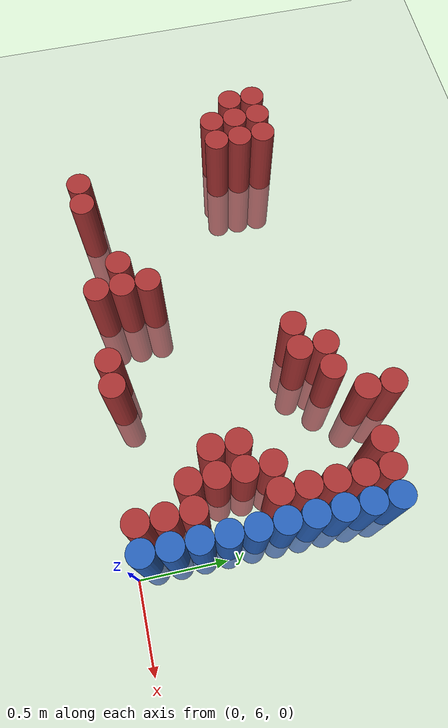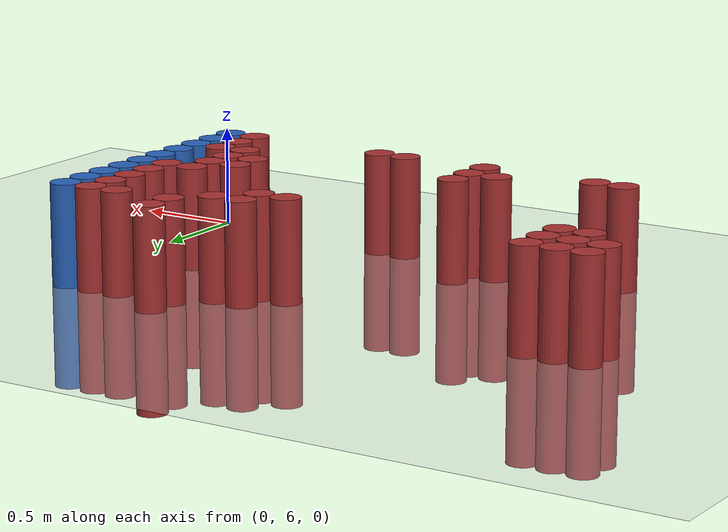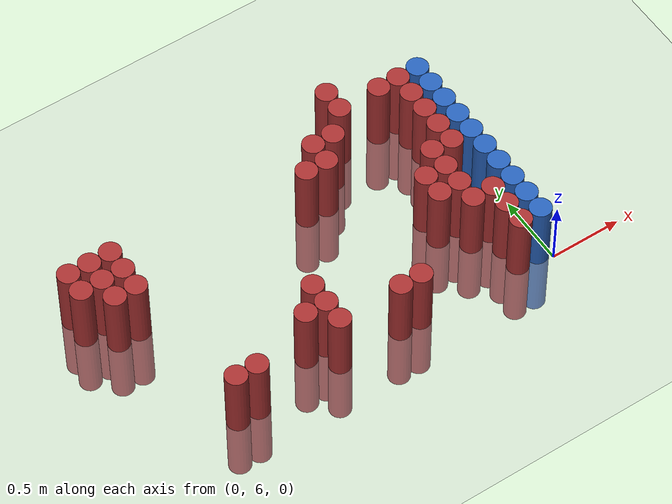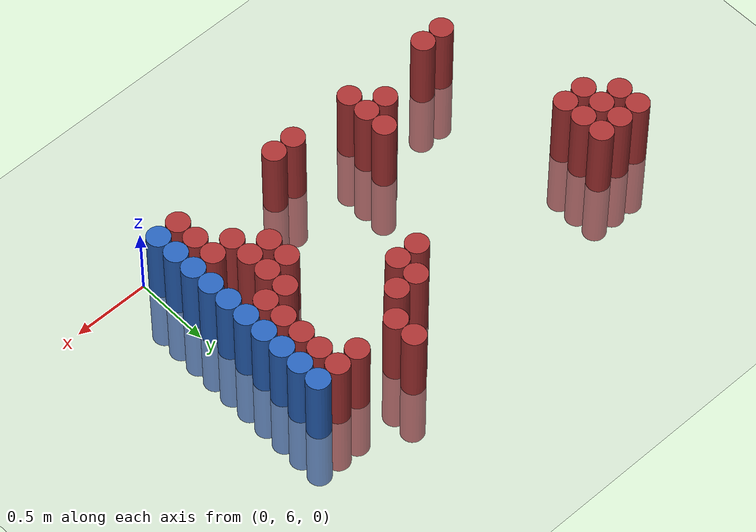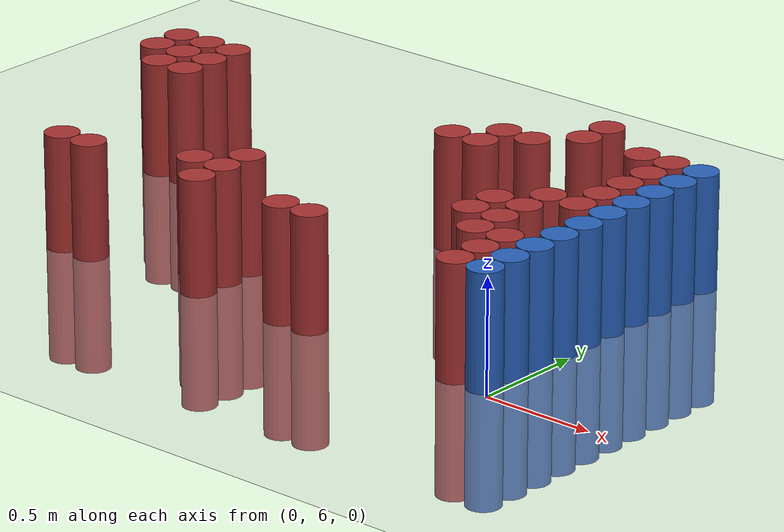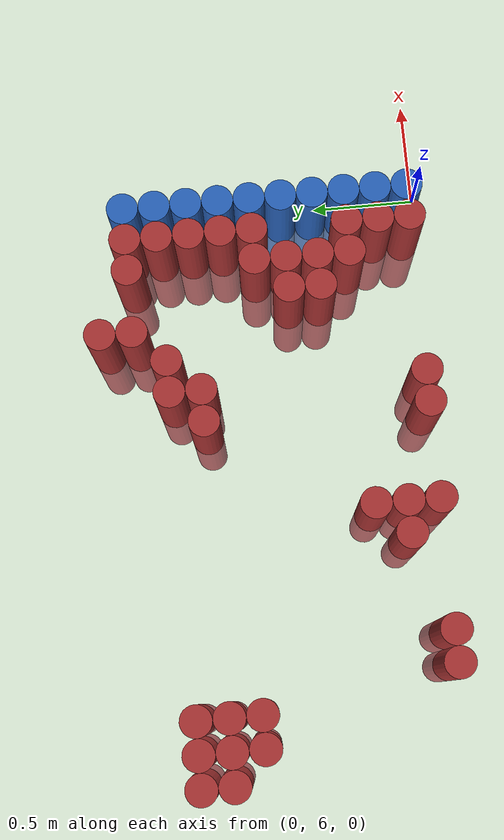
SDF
<sdf version="1.6">
 <world name="default">
  <model name="ground_plane">
   <static>1</static>
   <link name="link">
    <collision name="collision">
     <geometry><plane><normal>0 0 1</normal><size>100 100</size></plane></geometry>
     <surface><friction><ode><mu>100</mu><mu2>50</mu2></ode></friction></surface>
    </collision>
    <visual name="visual">
     <cast_shadows>0</cast_shadows>
     <geometry><plane><normal>0 0 1</normal><size>100 100</size></plane></geometry>
     <material>
      <script><uri>file://media/materials/scripts/gazebo.material</uri><name>Gazebo/Grey</name></script>
     </material>
    </visual>
   </link>
  </model>
  <model name="unit_cylinder_166">
   <static>1</static>
   <pose>-2.775000 7.125000 0.000000 0.000000 0.000000 0.000000</pose>
   <link name="link">
    <inertial>
     <mass>1</mass>
     <inertia><ixx>0.145833</ixx><ixy>0</ixy><ixz>0</ixz><iyy>0.145833</iyy><iyz>0</iyz><izz>0.125</izz></inertia>
    </inertial>
    <collision name="collision">
     <geometry><cylinder><radius>0.075000</radius><length>1</length></cylinder></geometry>
    </collision>
    <visual name="visual">
     <geometry><cylinder><radius>0.075000</radius><length>1</length></cylinder></geometry>
     <material>
      <ambient>0.648000 0.192000 0.192000 1</ambient>
      <diffuse>0.648000 0.192000 0.192000 1</diffuse>
     </material>
     <material>
      <script><name>Gazebo/Grey</name><uri>file://media/materials/scripts/gazebo.material</uri></script>
     </material>
    </visual>
   </link>
  </model>
  <model name="unit_cylinder_167">
   <static>1</static>
   <pose>-2.775000 7.275000 0.000000 0.000000 0.000000 0.000000</pose>
   <link name="link">
    <inertial>
     <mass>1</mass>
     <inertia><ixx>0.145833</ixx><ixy>0</ixy><ixz>0</ixz><iyy>0.145833</iyy><iyz>0</iyz><izz>0.125</izz></inertia>
    </inertial>
    <collision name="collision">
     <geometry><cylinder><radius>0.075000</radius><length>1</length></cylinder></geometry>
    </collision>
    <visual name="visual">
     <geometry><cylinder><radius>0.075000</radius><length>1</length></cylinder></geometry>
     <material>
      <ambient>0.648000 0.192000 0.192000 1</ambient>
      <diffuse>0.648000 0.192000 0.192000 1</diffuse>
     </material>
     <material>
      <script><name>Gazebo/Grey</name><uri>file://media/materials/scripts/gazebo.material</uri></script>
     </material>
    </visual>
   </link>
  </model>
  <model name="unit_cylinder_171">
   <static>1</static>
   <pose>-2.625000 6.975000 0.000000 0.000000 0.000000 0.000000</pose>
   <link name="link">
    <inertial>
     <mass>1</mass>
     <inertia><ixx>0.145833</ixx><ixy>0</ixy><ixz>0</ixz><iyy>0.145833</iyy><iyz>0</iyz><izz>0.125</izz></inertia>
    </inertial>
    <collision name="collision">
     <geometry><cylinder><radius>0.075000</radius><length>1</length></cylinder></geometry>
    </collision>
    <visual name="visual">
     <geometry><cylinder><radius>0.075000</radius><length>1</length></cylinder></geometry>
     <material>
      <ambient>0.648000 0.192000 0.192000 1</ambient>
      <diffuse>0.648000 0.192000 0.192000 1</diffuse>
     </material>
     <material>
      <script><name>Gazebo/Grey</name><uri>file://media/materials/scripts/gazebo.material</uri></script>
     </material>
    </visual>
   </link>
  </model>
  <model name="unit_cylinder_172">
   <static>1</static>
   <pose>-2.625000 7.125000 0.000000 0.000000 0.000000 0.000000</pose>
   <link name="link">
    <inertial>
     <mass>1</mass>
     <inertia><ixx>0.145833</ixx><ixy>0</ixy><ixz>0</ixz><iyy>0.145833</iyy><iyz>0</iyz><izz>0.125</izz></inertia>
    </inertial>
    <collision name="collision">
     <geometry><cylinder><radius>0.075000</radius><length>1</length></cylinder></geometry>
    </collision>
    <visual name="visual">
     <geometry><cylinder><radius>0.075000</radius><length>1</length></cylinder></geometry>
     <material>
      <ambient>0.648000 0.192000 0.192000 1</ambient>
      <diffuse>0.648000 0.192000 0.192000 1</diffuse>
     </material>
     <material>
      <script><name>Gazebo/Grey</name><uri>file://media/materials/scripts/gazebo.material</uri></script>
     </material>
    </visual>
   </link>
  </model>
  <model name="unit_cylinder_173">
   <static>1</static>
   <pose>-2.625000 7.275000 0.000000 0.000000 0.000000 0.000000</pose>
   <link name="link">
    <inertial>
     <mass>1</mass>
     <inertia><ixx>0.145833</ixx><ixy>0</ixy><ixz>0</ixz><iyy>0.145833</iyy><iyz>0</iyz><izz>0.125</izz></inertia>
    </inertial>
    <collision name="collision">
     <geometry><cylinder><radius>0.075000</radius><length>1</length></cylinder></geometry>
    </collision>
    <visual name="visual">
     <geometry><cylinder><radius>0.075000</radius><length>1</length></cylinder></geometry>
     <material>
      <ambient>0.648000 0.192000 0.192000 1</ambient>
      <diffuse>0.648000 0.192000 0.192000 1</diffuse>
     </material>
     <material>
      <script><name>Gazebo/Grey</name><uri>file://media/materials/scripts/gazebo.material</uri></script>
     </material>
    </visual>
   </link>
  </model>
  <model name="unit_cylinder_176">
   <static>1</static>
   <pose>-2.475000 6.975000 0.000000 0.000000 0.000000 0.000000</pose>
   <link name="link">
    <inertial>
     <mass>1</mass>
     <inertia><ixx>0.145833</ixx><ixy>0</ixy><ixz>0</ixz><iyy>0.145833</iyy><iyz>0</iyz><izz>0.125</izz></inertia>
    </inertial>
    <collision name="collision">
     <geometry><cylinder><radius>0.075000</radius><length>1</length></cylinder></geometry>
    </collision>
    <visual name="visual">
     <geometry><cylinder><radius>0.075000</radius><length>1</length></cylinder></geometry>
     <material>
      <ambient>0.648000 0.192000 0.192000 1</ambient>
      <diffuse>0.648000 0.192000 0.192000 1</diffuse>
     </material>
     <material>
      <script><name>Gazebo/Grey</name><uri>file://media/materials/scripts/gazebo.material</uri></script>
     </material>
    </visual>
   </link>
  </model>
  <model name="unit_cylinder_177">
   <static>1</static>
   <pose>-2.475000 7.125000 0.000000 0.000000 0.000000 0.000000</pose>
   <link name="link">
    <inertial>
     <mass>1</mass>
     <inertia><ixx>0.145833</ixx><ixy>0</ixy><ixz>0</ixz><iyy>0.145833</iyy><iyz>0</iyz><izz>0.125</izz></inertia>
    </inertial>
    <collision name="collision">
     <geometry><cylinder><radius>0.075000</radius><length>1</length></cylinder></geometry>
    </collision>
    <visual name="visual">
     <geometry><cylinder><radius>0.075000</radius><length>1</length></cylinder></geometry>
     <material>
      <ambient>0.648000 0.192000 0.192000 1</ambient>
      <diffuse>0.648000 0.192000 0.192000 1</diffuse>
     </material>
     <material>
      <script><name>Gazebo/Grey</name><uri>file://media/materials/scripts/gazebo.material</uri></script>
     </material>
    </visual>
   </link>
  </model>
  <model name="unit_cylinder_178">
   <static>1</static>
   <pose>-2.475000 7.275000 0.000000 0.000000 0.000000 0.000000</pose>
   <link name="link">
    <inertial>
     <mass>1</mass>
     <inertia><ixx>0.145833</ixx><ixy>0</ixy><ixz>0</ixz><iyy>0.145833</iyy><iyz>0</iyz><izz>0.125</izz></inertia>
    </inertial>
    <collision name="collision">
     <geometry><cylinder><radius>0.075000</radius><length>1</length></cylinder></geometry>
    </collision>
    <visual name="visual">
     <geometry><cylinder><radius>0.075000</radius><length>1</length></cylinder></geometry>
     <material>
      <ambient>0.648000 0.192000 0.192000 1</ambient>
      <diffuse>0.648000 0.192000 0.192000 1</diffuse>
     </material>
     <material>
      <script><name>Gazebo/Grey</name><uri>file://media/materials/scripts/gazebo.material</uri></script>
     </material>
    </visual>
   </link>
  </model>
  <model name="unit_cylinder_180">
   <static>1</static>
   <pose>-2.325000 6.075000 0.000000 0.000000 0.000000 0.000000</pose>
   <link name="link">
    <inertial>
     <mass>1</mass>
     <inertia><ixx>0.145833</ixx><ixy>0</ixy><ixz>0</ixz><iyy>0.145833</iyy><iyz>0</iyz><izz>0.125</izz></inertia>
    </inertial>
    <collision name="collision">
     <geometry><cylinder><radius>0.075000</radius><length>1</length></cylinder></geometry>
    </collision>
    <visual name="visual">
     <geometry><cylinder><radius>0.075000</radius><length>1</length></cylinder></geometry>
     <material>
      <ambient>0.648000 0.192000 0.192000 1</ambient>
      <diffuse>0.648000 0.192000 0.192000 1</diffuse>
     </material>
     <material>
      <script><name>Gazebo/Grey</name><uri>file://media/materials/scripts/gazebo.material</uri></script>
     </material>
    </visual>
   </link>
  </model>
  <model name="unit_cylinder_184">
   <static>1</static>
   <pose>-2.175000 6.075000 0.000000 0.000000 0.000000 0.000000</pose>
   <link name="link">
    <inertial>
     <mass>1</mass>
     <inertia><ixx>0.145833</ixx><ixy>0</ixy><ixz>0</ixz><iyy>0.145833</iyy><iyz>0</iyz><izz>0.125</izz></inertia>
    </inertial>
    <collision name="collision">
     <geometry><cylinder><radius>0.075000</radius><length>1</length></cylinder></geometry>
    </collision>
    <visual name="visual">
     <geometry><cylinder><radius>0.075000</radius><length>1</length></cylinder></geometry>
     <material>
      <ambient>0.648000 0.192000 0.192000 1</ambient>
      <diffuse>0.648000 0.192000 0.192000 1</diffuse>
     </material>
     <material>
      <script><name>Gazebo/Grey</name><uri>file://media/materials/scripts/gazebo.material</uri></script>
     </material>
    </visual>
   </link>
  </model>
  <model name="unit_cylinder_200">
   <static>1</static>
   <pose>-1.725000 6.225000 0.000000 0.000000 0.000000 0.000000</pose>
   <link name="link">
    <inertial>
     <mass>1</mass>
     <inertia><ixx>0.145833</ixx><ixy>0</ixy><ixz>0</ixz><iyy>0.145833</iyy><iyz>0</iyz><izz>0.125</izz></inertia>
    </inertial>
    <collision name="collision">
     <geometry><cylinder><radius>0.075000</radius><length>1</length></cylinder></geometry>
    </collision>
    <visual name="visual">
     <geometry><cylinder><radius>0.075000</radius><length>1</length></cylinder></geometry>
     <material>
      <ambient>0.648000 0.192000 0.192000 1</ambient>
      <diffuse>0.648000 0.192000 0.192000 1</diffuse>
     </material>
     <material>
      <script><name>Gazebo/Grey</name><uri>file://media/materials/scripts/gazebo.material</uri></script>
     </material>
    </visual>
   </link>
  </model>
  <model name="unit_cylinder_205">
   <static>1</static>
   <pose>-1.575000 6.075000 0.000000 0.000000 0.000000 0.000000</pose>
   <link name="link">
    <inertial>
     <mass>1</mass>
     <inertia><ixx>0.145833</ixx><ixy>0</ixy><ixz>0</ixz><iyy>0.145833</iyy><iyz>0</iyz><izz>0.125</izz></inertia>
    </inertial>
    <collision name="collision">
     <geometry><cylinder><radius>0.075000</radius><length>1</length></cylinder></geometry>
    </collision>
    <visual name="visual">
     <geometry><cylinder><radius>0.075000</radius><length>1</length></cylinder></geometry>
     <material>
      <ambient>0.648000 0.192000 0.192000 1</ambient>
      <diffuse>0.648000 0.192000 0.192000 1</diffuse>
     </material>
     <material>
      <script><name>Gazebo/Grey</name><uri>file://media/materials/scripts/gazebo.material</uri></script>
     </material>
    </visual>
   </link>
  </model>
  <model name="unit_cylinder_206">
   <static>1</static>
   <pose>-1.575000 6.225000 0.000000 0.000000 0.000000 0.000000</pose>
   <link name="link">
    <inertial>
     <mass>1</mass>
     <inertia><ixx>0.145833</ixx><ixy>0</ixy><ixz>0</ixz><iyy>0.145833</iyy><iyz>0</iyz><izz>0.125</izz></inertia>
    </inertial>
    <collision name="collision">
     <geometry><cylinder><radius>0.075000</radius><length>1</length></cylinder></geometry>
    </collision>
    <visual name="visual">
     <geometry><cylinder><radius>0.075000</radius><length>1</length></cylinder></geometry>
     <material>
      <ambient>0.648000 0.192000 0.192000 1</ambient>
      <diffuse>0.648000 0.192000 0.192000 1</diffuse>
     </material>
     <material>
      <script><name>Gazebo/Grey</name><uri>file://media/materials/scripts/gazebo.material</uri></script>
     </material>
    </visual>
   </link>
  </model>
  <model name="unit_cylinder_207">
   <static>1</static>
   <pose>-1.575000 6.375000 0.000000 0.000000 0.000000 0.000000</pose>
   <link name="link">
    <inertial>
     <mass>1</mass>
     <inertia><ixx>0.145833</ixx><ixy>0</ixy><ixz>0</ixz><iyy>0.145833</iyy><iyz>0</iyz><izz>0.125</izz></inertia>
    </inertial>
    <collision name="collision">
     <geometry><cylinder><radius>0.075000</radius><length>1</length></cylinder></geometry>
    </collision>
    <visual name="visual">
     <geometry><cylinder><radius>0.075000</radius><length>1</length></cylinder></geometry>
     <material>
      <ambient>0.648000 0.192000 0.192000 1</ambient>
      <diffuse>0.648000 0.192000 0.192000 1</diffuse>
     </material>
     <material>
      <script><name>Gazebo/Grey</name><uri>file://media/materials/scripts/gazebo.material</uri></script>
     </material>
    </visual>
   </link>
  </model>
  <model name="unit_cylinder_208">
   <static>1</static>
   <pose>-1.125000 6.075000 0.000000 0.000000 0.000000 0.000000</pose>
   <link name="link">
    <inertial>
     <mass>1</mass>
     <inertia><ixx>0.145833</ixx><ixy>0</ixy><ixz>0</ixz><iyy>0.145833</iyy><iyz>0</iyz><izz>0.125</izz></inertia>
    </inertial>
    <collision name="collision">
     <geometry><cylinder><radius>0.075000</radius><length>1</length></cylinder></geometry>
    </collision>
    <visual name="visual">
     <geometry><cylinder><radius>0.075000</radius><length>1</length></cylinder></geometry>
     <material>
      <ambient>0.648000 0.192000 0.192000 1</ambient>
      <diffuse>0.648000 0.192000 0.192000 1</diffuse>
     </material>
     <material>
      <script><name>Gazebo/Grey</name><uri>file://media/materials/scripts/gazebo.material</uri></script>
     </material>
    </visual>
   </link>
  </model>
  <model name="unit_cylinder_209">
   <static>1</static>
   <pose>-1.125000 7.125000 0.000000 0.000000 0.000000 0.000000</pose>
   <link name="link">
    <inertial>
     <mass>1</mass>
     <inertia><ixx>0.145833</ixx><ixy>0</ixy><ixz>0</ixz><iyy>0.145833</iyy><iyz>0</iyz><izz>0.125</izz></inertia>
    </inertial>
    <collision name="collision">
     <geometry><cylinder><radius>0.075000</radius><length>1</length></cylinder></geometry>
    </collision>
    <visual name="visual">
     <geometry><cylinder><radius>0.075000</radius><length>1</length></cylinder></geometry>
     <material>
      <ambient>0.648000 0.192000 0.192000 1</ambient>
      <diffuse>0.648000 0.192000 0.192000 1</diffuse>
     </material>
     <material>
      <script><name>Gazebo/Grey</name><uri>file://media/materials/scripts/gazebo.material</uri></script>
     </material>
    </visual>
   </link>
  </model>
  <model name="unit_cylinder_211">
   <static>1</static>
   <pose>-0.975000 6.075000 0.000000 0.000000 0.000000 0.000000</pose>
   <link name="link">
    <inertial>
     <mass>1</mass>
     <inertia><ixx>0.145833</ixx><ixy>0</ixy><ixz>0</ixz><iyy>0.145833</iyy><iyz>0</iyz><izz>0.125</izz></inertia>
    </inertial>
    <collision name="collision">
     <geometry><cylinder><radius>0.075000</radius><length>1</length></cylinder></geometry>
    </collision>
    <visual name="visual">
     <geometry><cylinder><radius>0.075000</radius><length>1</length></cylinder></geometry>
     <material>
      <ambient>0.648000 0.192000 0.192000 1</ambient>
      <diffuse>0.648000 0.192000 0.192000 1</diffuse>
     </material>
     <material>
      <script><name>Gazebo/Grey</name><uri>file://media/materials/scripts/gazebo.material</uri></script>
     </material>
    </visual>
   </link>
  </model>
  <model name="unit_cylinder_212">
   <static>1</static>
   <pose>-0.975000 7.125000 0.000000 0.000000 0.000000 0.000000</pose>
   <link name="link">
    <inertial>
     <mass>1</mass>
     <inertia><ixx>0.145833</ixx><ixy>0</ixy><ixz>0</ixz><iyy>0.145833</iyy><iyz>0</iyz><izz>0.125</izz></inertia>
    </inertial>
    <collision name="collision">
     <geometry><cylinder><radius>0.075000</radius><length>1</length></cylinder></geometry>
    </collision>
    <visual name="visual">
     <geometry><cylinder><radius>0.075000</radius><length>1</length></cylinder></geometry>
     <material>
      <ambient>0.648000 0.192000 0.192000 1</ambient>
      <diffuse>0.648000 0.192000 0.192000 1</diffuse>
     </material>
     <material>
      <script><name>Gazebo/Grey</name><uri>file://media/materials/scripts/gazebo.material</uri></script>
     </material>
    </visual>
   </link>
  </model>
  <model name="unit_cylinder_213">
   <static>1</static>
   <pose>-0.975000 7.275000 0.000000 0.000000 0.000000 0.000000</pose>
   <link name="link">
    <inertial>
     <mass>1</mass>
     <inertia><ixx>0.145833</ixx><ixy>0</ixy><ixz>0</ixz><iyy>0.145833</iyy><iyz>0</iyz><izz>0.125</izz></inertia>
    </inertial>
    <collision name="collision">
     <geometry><cylinder><radius>0.075000</radius><length>1</length></cylinder></geometry>
    </collision>
    <visual name="visual">
     <geometry><cylinder><radius>0.075000</radius><length>1</length></cylinder></geometry>
     <material>
      <ambient>0.648000 0.192000 0.192000 1</ambient>
      <diffuse>0.648000 0.192000 0.192000 1</diffuse>
     </material>
     <material>
      <script><name>Gazebo/Grey</name><uri>file://media/materials/scripts/gazebo.material</uri></script>
     </material>
    </visual>
   </link>
  </model>
  <model name="unit_cylinder_214">
   <static>1</static>
   <pose>-0.825000 7.275000 0.000000 0.000000 0.000000 0.000000</pose>
   <link name="link">
    <inertial>
     <mass>1</mass>
     <inertia><ixx>0.145833</ixx><ixy>0</ixy><ixz>0</ixz><iyy>0.145833</iyy><iyz>0</iyz><izz>0.125</izz></inertia>
    </inertial>
    <collision name="collision">
     <geometry><cylinder><radius>0.075000</radius><length>1</length></cylinder></geometry>
    </collision>
    <visual name="visual">
     <geometry><cylinder><radius>0.075000</radius><length>1</length></cylinder></geometry>
     <material>
      <ambient>0.648000 0.192000 0.192000 1</ambient>
      <diffuse>0.648000 0.192000 0.192000 1</diffuse>
     </material>
     <material>
      <script><name>Gazebo/Grey</name><uri>file://media/materials/scripts/gazebo.material</uri></script>
     </material>
    </visual>
   </link>
  </model>
  <model name="unit_cylinder_217">
   <static>1</static>
   <pose>-0.675000 7.425000 0.000000 0.000000 0.000000 0.000000</pose>
   <link name="link">
    <inertial>
     <mass>1</mass>
     <inertia><ixx>0.145833</ixx><ixy>0</ixy><ixz>0</ixz><iyy>0.145833</iyy><iyz>0</iyz><izz>0.125</izz></inertia>
    </inertial>
    <collision name="collision">
     <geometry><cylinder><radius>0.075000</radius><length>1</length></cylinder></geometry>
    </collision>
    <visual name="visual">
     <geometry><cylinder><radius>0.075000</radius><length>1</length></cylinder></geometry>
     <material>
      <ambient>0.648000 0.192000 0.192000 1</ambient>
      <diffuse>0.648000 0.192000 0.192000 1</diffuse>
     </material>
     <material>
      <script><name>Gazebo/Grey</name><uri>file://media/materials/scripts/gazebo.material</uri></script>
     </material>
    </visual>
   </link>
  </model>
  <model name="unit_cylinder_218">
   <static>1</static>
   <pose>-0.675000 7.575000 0.000000 0.000000 0.000000 0.000000</pose>
   <link name="link">
    <inertial>
     <mass>1</mass>
     <inertia><ixx>0.145833</ixx><ixy>0</ixy><ixz>0</ixz><iyy>0.145833</iyy><iyz>0</iyz><izz>0.125</izz></inertia>
    </inertial>
    <collision name="collision">
     <geometry><cylinder><radius>0.075000</radius><length>1</length></cylinder></geometry>
    </collision>
    <visual name="visual">
     <geometry><cylinder><radius>0.075000</radius><length>1</length></cylinder></geometry>
     <material>
      <ambient>0.648000 0.192000 0.192000 1</ambient>
      <diffuse>0.648000 0.192000 0.192000 1</diffuse>
     </material>
     <material>
      <script><name>Gazebo/Grey</name><uri>file://media/materials/scripts/gazebo.material</uri></script>
     </material>
    </visual>
   </link>
  </model>
  <model name="unit_cylinder_222">
   <static>1</static>
   <pose>-0.525000 6.525000 0.000000 0.000000 0.000000 0.000000</pose>
   <link name="link">
    <inertial>
     <mass>1</mass>
     <inertia><ixx>0.145833</ixx><ixy>0</ixy><ixz>0</ixz><iyy>0.145833</iyy><iyz>0</iyz><izz>0.125</izz></inertia>
    </inertial>
    <collision name="collision">
     <geometry><cylinder><radius>0.075000</radius><length>1</length></cylinder></geometry>
    </collision>
    <visual name="visual">
     <geometry><cylinder><radius>0.075000</radius><length>1</length></cylinder></geometry>
     <material>
      <ambient>0.648000 0.192000 0.192000 1</ambient>
      <diffuse>0.648000 0.192000 0.192000 1</diffuse>
     </material>
     <material>
      <script><name>Gazebo/Grey</name><uri>file://media/materials/scripts/gazebo.material</uri></script>
     </material>
    </visual>
   </link>
  </model>
  <model name="unit_cylinder_223">
   <static>1</static>
   <pose>-0.525000 6.675000 0.000000 0.000000 0.000000 0.000000</pose>
   <link name="link">
    <inertial>
     <mass>1</mass>
     <inertia><ixx>0.145833</ixx><ixy>0</ixy><ixz>0</ixz><iyy>0.145833</iyy><iyz>0</iyz><izz>0.125</izz></inertia>
    </inertial>
    <collision name="collision">
     <geometry><cylinder><radius>0.075000</radius><length>1</length></cylinder></geometry>
    </collision>
    <visual name="visual">
     <geometry><cylinder><radius>0.075000</radius><length>1</length></cylinder></geometry>
     <material>
      <ambient>0.648000 0.192000 0.192000 1</ambient>
      <diffuse>0.648000 0.192000 0.192000 1</diffuse>
     </material>
     <material>
      <script><name>Gazebo/Grey</name><uri>file://media/materials/scripts/gazebo.material</uri></script>
     </material>
    </visual>
   </link>
  </model>
  <model name="unit_cylinder_230">
   <static>1</static>
   <pose>-0.375000 6.375000 0.000000 0.000000 0.000000 0.000000</pose>
   <link name="link">
    <inertial>
     <mass>1</mass>
     <inertia><ixx>0.145833</ixx><ixy>0</ixy><ixz>0</ixz><iyy>0.145833</iyy><iyz>0</iyz><izz>0.125</izz></inertia>
    </inertial>
    <collision name="collision">
     <geometry><cylinder><radius>0.075000</radius><length>1</length></cylinder></geometry>
    </collision>
    <visual name="visual">
     <geometry><cylinder><radius>0.075000</radius><length>1</length></cylinder></geometry>
     <material>
      <ambient>0.648000 0.192000 0.192000 1</ambient>
      <diffuse>0.648000 0.192000 0.192000 1</diffuse>
     </material>
     <material>
      <script><name>Gazebo/Grey</name><uri>file://media/materials/scripts/gazebo.material</uri></script>
     </material>
    </visual>
   </link>
  </model>
  <model name="unit_cylinder_231">
   <static>1</static>
   <pose>-0.375000 6.525000 0.000000 0.000000 0.000000 0.000000</pose>
   <link name="link">
    <inertial>
     <mass>1</mass>
     <inertia><ixx>0.145833</ixx><ixy>0</ixy><ixz>0</ixz><iyy>0.145833</iyy><iyz>0</iyz><izz>0.125</izz></inertia>
    </inertial>
    <collision name="collision">
     <geometry><cylinder><radius>0.075000</radius><length>1</length></cylinder></geometry>
    </collision>
    <visual name="visual">
     <geometry><cylinder><radius>0.075000</radius><length>1</length></cylinder></geometry>
     <material>
      <ambient>0.648000 0.192000 0.192000 1</ambient>
      <diffuse>0.648000 0.192000 0.192000 1</diffuse>
     </material>
     <material>
      <script><name>Gazebo/Grey</name><uri>file://media/materials/scripts/gazebo.material</uri></script>
     </material>
    </visual>
   </link>
  </model>
  <model name="unit_cylinder_232">
   <static>1</static>
   <pose>-0.375000 6.675000 0.000000 0.000000 0.000000 0.000000</pose>
   <link name="link">
    <inertial>
     <mass>1</mass>
     <inertia><ixx>0.145833</ixx><ixy>0</ixy><ixz>0</ixz><iyy>0.145833</iyy><iyz>0</iyz><izz>0.125</izz></inertia>
    </inertial>
    <collision name="collision">
     <geometry><cylinder><radius>0.075000</radius><length>1</length></cylinder></geometry>
    </collision>
    <visual name="visual">
     <geometry><cylinder><radius>0.075000</radius><length>1</length></cylinder></geometry>
     <material>
      <ambient>0.648000 0.192000 0.192000 1</ambient>
      <diffuse>0.648000 0.192000 0.192000 1</diffuse>
     </material>
     <material>
      <script><name>Gazebo/Grey</name><uri>file://media/materials/scripts/gazebo.material</uri></script>
     </material>
    </visual>
   </link>
  </model>
  <model name="unit_cylinder_233">
   <static>1</static>
   <pose>-0.375000 6.825000 0.000000 0.000000 0.000000 0.000000</pose>
   <link name="link">
    <inertial>
     <mass>1</mass>
     <inertia><ixx>0.145833</ixx><ixy>0</ixy><ixz>0</ixz><iyy>0.145833</iyy><iyz>0</iyz><izz>0.125</izz></inertia>
    </inertial>
    <collision name="collision">
     <geometry><cylinder><radius>0.075000</radius><length>1</length></cylinder></geometry>
    </collision>
    <visual name="visual">
     <geometry><cylinder><radius>0.075000</radius><length>1</length></cylinder></geometry>
     <material>
      <ambient>0.648000 0.192000 0.192000 1</ambient>
      <diffuse>0.648000 0.192000 0.192000 1</diffuse>
     </material>
     <material>
      <script><name>Gazebo/Grey</name><uri>file://media/materials/scripts/gazebo.material</uri></script>
     </material>
    </visual>
   </link>
  </model>
  <model name="unit_cylinder_234">
   <static>1</static>
   <pose>-0.375000 7.425000 0.000000 0.000000 0.000000 0.000000</pose>
   <link name="link">
    <inertial>
     <mass>1</mass>
     <inertia><ixx>0.145833</ixx><ixy>0</ixy><ixz>0</ixz><iyy>0.145833</iyy><iyz>0</iyz><izz>0.125</izz></inertia>
    </inertial>
    <collision name="collision">
     <geometry><cylinder><radius>0.075000</radius><length>1</length></cylinder></geometry>
    </collision>
    <visual name="visual">
     <geometry><cylinder><radius>0.075000</radius><length>1</length></cylinder></geometry>
     <material>
      <ambient>0.648000 0.192000 0.192000 1</ambient>
      <diffuse>0.648000 0.192000 0.192000 1</diffuse>
     </material>
     <material>
      <script><name>Gazebo/Grey</name><uri>file://media/materials/scripts/gazebo.material</uri></script>
     </material>
    </visual>
   </link>
  </model>
  <model name="unit_cylinder_246">
   <static>1</static>
   <pose>-0.225000 6.075000 0.000000 0.000000 0.000000 0.000000</pose>
   <link name="link">
    <inertial>
     <mass>1</mass>
     <inertia><ixx>0.145833</ixx><ixy>0</ixy><ixz>0</ixz><iyy>0.145833</iyy><iyz>0</iyz><izz>0.125</izz></inertia>
    </inertial>
    <collision name="collision">
     <geometry><cylinder><radius>0.075000</radius><length>1</length></cylinder></geometry>
    </collision>
    <visual name="visual">
     <geometry><cylinder><radius>0.075000</radius><length>1</length></cylinder></geometry>
     <material>
      <ambient>0.648000 0.192000 0.192000 1</ambient>
      <diffuse>0.648000 0.192000 0.192000 1</diffuse>
     </material>
     <material>
      <script><name>Gazebo/Grey</name><uri>file://media/materials/scripts/gazebo.material</uri></script>
     </material>
    </visual>
   </link>
  </model>
  <model name="unit_cylinder_247">
   <static>1</static>
   <pose>-0.225000 6.225000 0.000000 0.000000 0.000000 0.000000</pose>
   <link name="link">
    <inertial>
     <mass>1</mass>
     <inertia><ixx>0.145833</ixx><ixy>0</ixy><ixz>0</ixz><iyy>0.145833</iyy><iyz>0</iyz><izz>0.125</izz></inertia>
    </inertial>
    <collision name="collision">
     <geometry><cylinder><radius>0.075000</radius><length>1</length></cylinder></geometry>
    </collision>
    <visual name="visual">
     <geometry><cylinder><radius>0.075000</radius><length>1</length></cylinder></geometry>
     <material>
      <ambient>0.648000 0.192000 0.192000 1</ambient>
      <diffuse>0.648000 0.192000 0.192000 1</diffuse>
     </material>
     <material>
      <script><name>Gazebo/Grey</name><uri>file://media/materials/scripts/gazebo.material</uri></script>
     </material>
    </visual>
   </link>
  </model>
  <model name="unit_cylinder_248">
   <static>1</static>
   <pose>-0.225000 6.375000 0.000000 0.000000 0.000000 0.000000</pose>
   <link name="link">
    <inertial>
     <mass>1</mass>
     <inertia><ixx>0.145833</ixx><ixy>0</ixy><ixz>0</ixz><iyy>0.145833</iyy><iyz>0</iyz><izz>0.125</izz></inertia>
    </inertial>
    <collision name="collision">
     <geometry><cylinder><radius>0.075000</radius><length>1</length></cylinder></geometry>
    </collision>
    <visual name="visual">
     <geometry><cylinder><radius>0.075000</radius><length>1</length></cylinder></geometry>
     <material>
      <ambient>0.648000 0.192000 0.192000 1</ambient>
      <diffuse>0.648000 0.192000 0.192000 1</diffuse>
     </material>
     <material>
      <script><name>Gazebo/Grey</name><uri>file://media/materials/scripts/gazebo.material</uri></script>
     </material>
    </visual>
   </link>
  </model>
  <model name="unit_cylinder_249">
   <static>1</static>
   <pose>-0.225000 6.825000 0.000000 0.000000 0.000000 0.000000</pose>
   <link name="link">
    <inertial>
     <mass>1</mass>
     <inertia><ixx>0.145833</ixx><ixy>0</ixy><ixz>0</ixz><iyy>0.145833</iyy><iyz>0</iyz><izz>0.125</izz></inertia>
    </inertial>
    <collision name="collision">
     <geometry><cylinder><radius>0.075000</radius><length>1</length></cylinder></geometry>
    </collision>
    <visual name="visual">
     <geometry><cylinder><radius>0.075000</radius><length>1</length></cylinder></geometry>
     <material>
      <ambient>0.648000 0.192000 0.192000 1</ambient>
      <diffuse>0.648000 0.192000 0.192000 1</diffuse>
     </material>
     <material>
      <script><name>Gazebo/Grey</name><uri>file://media/materials/scripts/gazebo.material</uri></script>
     </material>
    </visual>
   </link>
  </model>
  <model name="unit_cylinder_250">
   <static>1</static>
   <pose>-0.225000 6.975000 0.000000 0.000000 0.000000 0.000000</pose>
   <link name="link">
    <inertial>
     <mass>1</mass>
     <inertia><ixx>0.145833</ixx><ixy>0</ixy><ixz>0</ixz><iyy>0.145833</iyy><iyz>0</iyz><izz>0.125</izz></inertia>
    </inertial>
    <collision name="collision">
     <geometry><cylinder><radius>0.075000</radius><length>1</length></cylinder></geometry>
    </collision>
    <visual name="visual">
     <geometry><cylinder><radius>0.075000</radius><length>1</length></cylinder></geometry>
     <material>
      <ambient>0.648000 0.192000 0.192000 1</ambient>
      <diffuse>0.648000 0.192000 0.192000 1</diffuse>
     </material>
     <material>
      <script><name>Gazebo/Grey</name><uri>file://media/materials/scripts/gazebo.material</uri></script>
     </material>
    </visual>
   </link>
  </model>
  <model name="unit_cylinder_251">
   <static>1</static>
   <pose>-0.225000 7.125000 0.000000 0.000000 0.000000 0.000000</pose>
   <link name="link">
    <inertial>
     <mass>1</mass>
     <inertia><ixx>0.145833</ixx><ixy>0</ixy><ixz>0</ixz><iyy>0.145833</iyy><iyz>0</iyz><izz>0.125</izz></inertia>
    </inertial>
    <collision name="collision">
     <geometry><cylinder><radius>0.075000</radius><length>1</length></cylinder></geometry>
    </collision>
    <visual name="visual">
     <geometry><cylinder><radius>0.075000</radius><length>1</length></cylinder></geometry>
     <material>
      <ambient>0.648000 0.192000 0.192000 1</ambient>
      <diffuse>0.648000 0.192000 0.192000 1</diffuse>
     </material>
     <material>
      <script><name>Gazebo/Grey</name><uri>file://media/materials/scripts/gazebo.material</uri></script>
     </material>
    </visual>
   </link>
  </model>
  <model name="unit_cylinder_252">
   <static>1</static>
   <pose>-0.225000 7.275000 0.000000 0.000000 0.000000 0.000000</pose>
   <link name="link">
    <inertial>
     <mass>1</mass>
     <inertia><ixx>0.145833</ixx><ixy>0</ixy><ixz>0</ixz><iyy>0.145833</iyy><iyz>0</iyz><izz>0.125</izz></inertia>
    </inertial>
    <collision name="collision">
     <geometry><cylinder><radius>0.075000</radius><length>1</length></cylinder></geometry>
    </collision>
    <visual name="visual">
     <geometry><cylinder><radius>0.075000</radius><length>1</length></cylinder></geometry>
     <material>
      <ambient>0.648000 0.192000 0.192000 1</ambient>
      <diffuse>0.648000 0.192000 0.192000 1</diffuse>
     </material>
     <material>
      <script><name>Gazebo/Grey</name><uri>file://media/materials/scripts/gazebo.material</uri></script>
     </material>
    </visual>
   </link>
  </model>
  <model name="unit_cylinder_253">
   <static>1</static>
   <pose>-0.225000 7.425000 0.000000 0.000000 0.000000 0.000000</pose>
   <link name="link">
    <inertial>
     <mass>1</mass>
     <inertia><ixx>0.145833</ixx><ixy>0</ixy><ixz>0</ixz><iyy>0.145833</iyy><iyz>0</iyz><izz>0.125</izz></inertia>
    </inertial>
    <collision name="collision">
     <geometry><cylinder><radius>0.075000</radius><length>1</length></cylinder></geometry>
    </collision>
    <visual name="visual">
     <geometry><cylinder><radius>0.075000</radius><length>1</length></cylinder></geometry>
     <material>
      <ambient>0.648000 0.192000 0.192000 1</ambient>
      <diffuse>0.648000 0.192000 0.192000 1</diffuse>
     </material>
     <material>
      <script><name>Gazebo/Grey</name><uri>file://media/materials/scripts/gazebo.material</uri></script>
     </material>
    </visual>
   </link>
  </model>
  <model name="unit_cylinder_262">
   <static>1</static>
   <pose>-0.075000 6.075000 0.000000 0.000000 0.000000 0.000000</pose>
   <link name="link">
    <inertial>
     <mass>1</mass>
     <inertia><ixx>0.145833</ixx><ixy>0</ixy><ixz>0</ixz><iyy>0.145833</iyy><iyz>0</iyz><izz>0.125</izz></inertia>
    </inertial>
    <collision name="collision">
     <geometry><cylinder><radius>0.075000</radius><length>1</length></cylinder></geometry>
    </collision>
    <visual name="visual">
     <geometry><cylinder><radius>0.075000</radius><length>1</length></cylinder></geometry>
     <material>
      <ambient>0.152000 0.379000 0.720000 1</ambient>
      <diffuse>0.152000 0.379000 0.720000 1</diffuse>
     </material>
     <material>
      <script><name>Gazebo/Grey</name><uri>file://media/materials/scripts/gazebo.material</uri></script>
     </material>
    </visual>
   </link>
  </model>
  <model name="unit_cylinder_263">
   <static>1</static>
   <pose>-0.075000 6.225000 0.000000 0.000000 0.000000 0.000000</pose>
   <link name="link">
    <inertial>
     <mass>1</mass>
     <inertia><ixx>0.145833</ixx><ixy>0</ixy><ixz>0</ixz><iyy>0.145833</iyy><iyz>0</iyz><izz>0.125</izz></inertia>
    </inertial>
    <collision name="collision">
     <geometry><cylinder><radius>0.075000</radius><length>1</length></cylinder></geometry>
    </collision>
    <visual name="visual">
     <geometry><cylinder><radius>0.075000</radius><length>1</length></cylinder></geometry>
     <material>
      <ambient>0.152000 0.379000 0.720000 1</ambient>
      <diffuse>0.152000 0.379000 0.720000 1</diffuse>
     </material>
     <material>
      <script><name>Gazebo/Grey</name><uri>file://media/materials/scripts/gazebo.material</uri></script>
     </material>
    </visual>
   </link>
  </model>
  <model name="unit_cylinder_264">
   <static>1</static>
   <pose>-0.075000 6.375000 0.000000 0.000000 0.000000 0.000000</pose>
   <link name="link">
    <inertial>
     <mass>1</mass>
     <inertia><ixx>0.145833</ixx><ixy>0</ixy><ixz>0</ixz><iyy>0.145833</iyy><iyz>0</iyz><izz>0.125</izz></inertia>
    </inertial>
    <collision name="collision">
     <geometry><cylinder><radius>0.075000</radius><length>1</length></cylinder></geometry>
    </collision>
    <visual name="visual">
     <geometry><cylinder><radius>0.075000</radius><length>1</length></cylinder></geometry>
     <material>
      <ambient>0.152000 0.379000 0.720000 1</ambient>
      <diffuse>0.152000 0.379000 0.720000 1</diffuse>
     </material>
     <material>
      <script><name>Gazebo/Grey</name><uri>file://media/materials/scripts/gazebo.material</uri></script>
     </material>
    </visual>
   </link>
  </model>
  <model name="unit_cylinder_265">
   <static>1</static>
   <pose>-0.075000 6.525000 0.000000 0.000000 0.000000 0.000000</pose>
   <link name="link">
    <inertial>
     <mass>1</mass>
     <inertia><ixx>0.145833</ixx><ixy>0</ixy><ixz>0</ixz><iyy>0.145833</iyy><iyz>0</iyz><izz>0.125</izz></inertia>
    </inertial>
    <collision name="collision">
     <geometry><cylinder><radius>0.075000</radius><length>1</length></cylinder></geometry>
    </collision>
    <visual name="visual">
     <geometry><cylinder><radius>0.075000</radius><length>1</length></cylinder></geometry>
     <material>
      <ambient>0.152000 0.379000 0.720000 1</ambient>
      <diffuse>0.152000 0.379000 0.720000 1</diffuse>
     </material>
     <material>
      <script><name>Gazebo/Grey</name><uri>file://media/materials/scripts/gazebo.material</uri></script>
     </material>
    </visual>
   </link>
  </model>
  <model name="unit_cylinder_266">
   <static>1</static>
   <pose>-0.075000 6.675000 0.000000 0.000000 0.000000 0.000000</pose>
   <link name="link">
    <inertial>
     <mass>1</mass>
     <inertia><ixx>0.145833</ixx><ixy>0</ixy><ixz>0</ixz><iyy>0.145833</iyy><iyz>0</iyz><izz>0.125</izz></inertia>
    </inertial>
    <collision name="collision">
     <geometry><cylinder><radius>0.075000</radius><length>1</length></cylinder></geometry>
    </collision>
    <visual name="visual">
     <geometry><cylinder><radius>0.075000</radius><length>1</length></cylinder></geometry>
     <material>
      <ambient>0.152000 0.379000 0.720000 1</ambient>
      <diffuse>0.152000 0.379000 0.720000 1</diffuse>
     </material>
     <material>
      <script><name>Gazebo/Grey</name><uri>file://media/materials/scripts/gazebo.material</uri></script>
     </material>
    </visual>
   </link>
  </model>
  <model name="unit_cylinder_267">
   <static>1</static>
   <pose>-0.075000 6.825000 0.000000 0.000000 0.000000 0.000000</pose>
   <link name="link">
    <inertial>
     <mass>1</mass>
     <inertia><ixx>0.145833</ixx><ixy>0</ixy><ixz>0</ixz><iyy>0.145833</iyy><iyz>0</iyz><izz>0.125</izz></inertia>
    </inertial>
    <collision name="collision">
     <geometry><cylinder><radius>0.075000</radius><length>1</length></cylinder></geometry>
    </collision>
    <visual name="visual">
     <geometry><cylinder><radius>0.075000</radius><length>1</length></cylinder></geometry>
     <material>
      <ambient>0.152000 0.379000 0.720000 1</ambient>
      <diffuse>0.152000 0.379000 0.720000 1</diffuse>
     </material>
     <material>
      <script><name>Gazebo/Grey</name><uri>file://media/materials/scripts/gazebo.material</uri></script>
     </material>
    </visual>
   </link>
  </model>
  <model name="unit_cylinder_268">
   <static>1</static>
   <pose>-0.075000 6.975000 0.000000 0.000000 0.000000 0.000000</pose>
   <link name="link">
    <inertial>
     <mass>1</mass>
     <inertia><ixx>0.145833</ixx><ixy>0</ixy><ixz>0</ixz><iyy>0.145833</iyy><iyz>0</iyz><izz>0.125</izz></inertia>
    </inertial>
    <collision name="collision">
     <geometry><cylinder><radius>0.075000</radius><length>1</length></cylinder></geometry>
    </collision>
    <visual name="visual">
     <geometry><cylinder><radius>0.075000</radius><length>1</length></cylinder></geometry>
     <material>
      <ambient>0.152000 0.379000 0.720000 1</ambient>
      <diffuse>0.152000 0.379000 0.720000 1</diffuse>
     </material>
     <material>
      <script><name>Gazebo/Grey</name><uri>file://media/materials/scripts/gazebo.material</uri></script>
     </material>
    </visual>
   </link>
  </model>
  <model name="unit_cylinder_269">
   <static>1</static>
   <pose>-0.075000 7.125000 0.000000 0.000000 0.000000 0.000000</pose>
   <link name="link">
    <inertial>
     <mass>1</mass>
     <inertia><ixx>0.145833</ixx><ixy>0</ixy><ixz>0</ixz><iyy>0.145833</iyy><iyz>0</iyz><izz>0.125</izz></inertia>
    </inertial>
    <collision name="collision">
     <geometry><cylinder><radius>0.075000</radius><length>1</length></cylinder></geometry>
    </collision>
    <visual name="visual">
     <geometry><cylinder><radius>0.075000</radius><length>1</length></cylinder></geometry>
     <material>
      <ambient>0.152000 0.379000 0.720000 1</ambient>
      <diffuse>0.152000 0.379000 0.720000 1</diffuse>
     </material>
     <material>
      <script><name>Gazebo/Grey</name><uri>file://media/materials/scripts/gazebo.material</uri></script>
     </material>
    </visual>
   </link>
  </model>
  <model name="unit_cylinder_270">
   <static>1</static>
   <pose>-0.075000 7.275000 0.000000 0.000000 0.000000 0.000000</pose>
   <link name="link">
    <inertial>
     <mass>1</mass>
     <inertia><ixx>0.145833</ixx><ixy>0</ixy><ixz>0</ixz><iyy>0.145833</iyy><iyz>0</iyz><izz>0.125</izz></inertia>
    </inertial>
    <collision name="collision">
     <geometry><cylinder><radius>0.075000</radius><length>1</length></cylinder></geometry>
    </collision>
    <visual name="visual">
     <geometry><cylinder><radius>0.075000</radius><length>1</length></cylinder></geometry>
     <material>
      <ambient>0.152000 0.379000 0.720000 1</ambient>
      <diffuse>0.152000 0.379000 0.720000 1</diffuse>
     </material>
     <material>
      <script><name>Gazebo/Grey</name><uri>file://media/materials/scripts/gazebo.material</uri></script>
     </material>
    </visual>
   </link>
  </model>
  <model name="unit_cylinder_271">
   <static>1</static>
   <pose>-0.075000 7.425000 0.000000 0.000000 0.000000 0.000000</pose>
   <link name="link">
    <inertial>
     <mass>1</mass>
     <inertia><ixx>0.145833</ixx><ixy>0</ixy><ixz>0</ixz><iyy>0.145833</iyy><iyz>0</iyz><izz>0.125</izz></inertia>
    </inertial>
    <collision name="collision">
     <geometry><cylinder><radius>0.075000</radius><length>1</length></cylinder></geometry>
    </collision>
    <visual name="visual">
     <geometry><cylinder><radius>0.075000</radius><length>1</length></cylinder></geometry>
     <material>
      <ambient>0.152000 0.379000 0.720000 1</ambient>
      <diffuse>0.152000 0.379000 0.720000 1</diffuse>
     </material>
     <material>
      <script><name>Gazebo/Grey</name><uri>file://media/materials/scripts/gazebo.material</uri></script>
     </material>
    </visual>
   </link>
  </model>
 </world>
</sdf>
